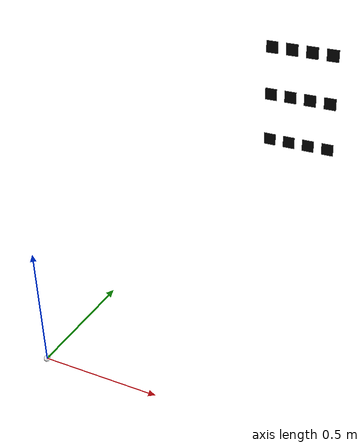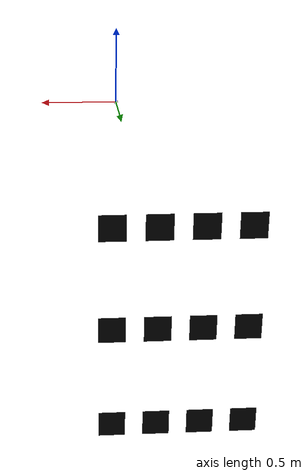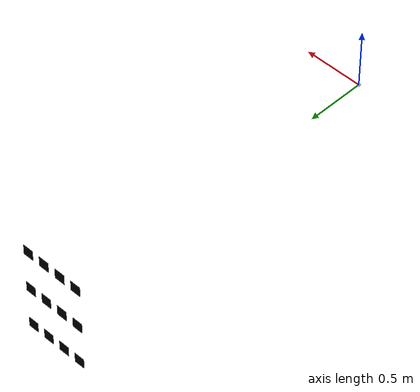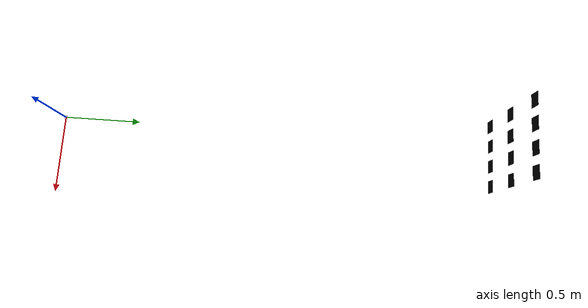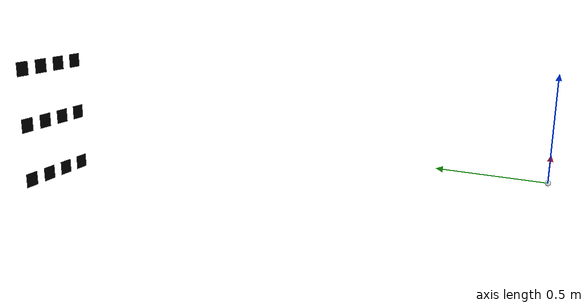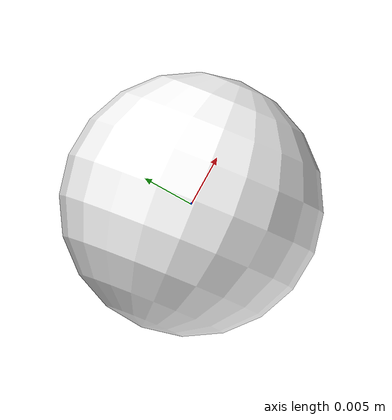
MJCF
<?xml version="1.0"?>
<mujoco>
    <compiler angle="radian"/>
    <option collision="all" timestep="0.002"/>
    <size njmax="1000" nconmax="400"/>
    <default class="main">
        <default class="eye">
            <position ctrllimited="true" kp="10"/>
            <joint type="hinge" stiffness="0.0" damping="0.05" armature="0.0" limited="true"/>
        </default>

        <default class="head-rotations">
            <position ctrllimited="true" kp="10"/>
            <joint type="hinge" stiffness="0.0" damping="0.25" armature="0.0" limited="true"/>
        </default>

        <default class="smart-glass-grid">
            <geom type="box" size="0.045 0.0000001 0.045" rgba="0 0 0 1"/>
        </default>

        <default class="background-grid">
            <geom type="box" size="0.008 0.0001 0.008" rgba="1 1 1 0"/>
        </default>
    </default>
    <asset>
        <texture type="skybox" builtin="gradient" rgb1="1 1 1" rgb2="0.6 0.8 1" width="256" height="256"/>
        <texture type="cube" name="blue-eye" file="assets/blue_eye_texture_circle.png" gridsize="3 4" gridlayout=".U..LFRB.D.."/>
        <material name="blue-eye" texture="blue-eye" texuniform="true"/>
        <mesh name="eye" file="assets/basic_eye_2.stl" scale="0.05 0.05 0.05"/>
        <mesh name="landscape-nus" file="assets/nus_soc_com2.stl" scale="0.025 0.025 0.025"/>
    </asset>
    <worldbody>
        <light name="scene_directional_light" directional="true" castshadow="false" cutoff="4" exponent="20"
               diffuse="1 1 1" specular="0 0 0" pos=".9 .3 2.5"/>

        <camera name="env" pos="0.35 -0.35 0.15" euler="1.4 0.5 0.12"/>

        <body name="eye" pos="0 0 0" quat="0.7071068 0.7071068 0 0">
                <geom name="eye" type="sphere" size="0.0125" material="blue-eye" rgba="1 1 1 1" quat="0.6625191 0.0130711 0.7488417 0.0115643"/>
                <camera name="eye" fovy="90"/>
                <joint name="eye-joint-x" class="eye" axis="1 0 0" range="-0.7854 0.7854"/>
                <joint name="eye-joint-y" class="eye" axis="0 1 0" range="-0.7854 0.7854"/>
                <site name="rangefinder-site" quat="0 0 1 0"/>
        </body>

        <body name="head" pos="0 0 0">
            <body name="smart-glass-pane-interline-spacing-100" pos="0 3 0">
                <geom name="grid-1" pos="-0.225 0 0.36" class="smart-glass-grid"/>
                <geom name="grid-2" pos="-0.075 0 0.36" class="smart-glass-grid"/>
                <geom name="grid-3" pos="0.075 0 0.36" class="smart-glass-grid"/>
                <geom name="grid-4" pos="0.225 0 0.36" class="smart-glass-grid"/>

                <geom name="grid-5" pos="-0.225 0 0" class="smart-glass-grid"/>
                <geom name="grid-6" pos="-0.075 0 0" class="smart-glass-grid"/>
                <geom name="grid-7" pos="0.075 0 0" class="smart-glass-grid"/>
                <geom name="grid-8" pos="0.225 0 0" class="smart-glass-grid"/>

                <geom name="grid-9" pos="-0.225 0 -0.36" class="smart-glass-grid"/>
                <geom name="grid-10" pos="-0.075 0 -0.36" class="smart-glass-grid"/>
                <geom name="grid-11" pos="0.075 0 -0.36" class="smart-glass-grid"/>
                <geom name="grid-12" pos="0.225 0 -0.36" class="smart-glass-grid"/>
            </body>

            <joint name="head-joint-x" class="head-rotations" axis="1 0 0" range="-1 1"/>
            <joint name="head-joint-z" class="head-rotations" axis="0 0 1" range="-1 1"/>
        </body>
        <geom name="landscape-nus" pos="10 100 0" type="mesh" mesh="landscape-nus"/>

    </worldbody>
    <actuator>
        <position name="eye-x-motor" joint="eye-joint-x" class="eye" ctrlrange="-0.7854 0.7854"/>
        <position name="eye-y-motor" joint="eye-joint-y" class="eye" ctrlrange="-0.7854 0.7854"/>
        <position name="head-x-motor" joint="head-joint-x" class="head-rotations" ctrlrange="-0.07 0.07"/>
        <position name="head-z-motor" joint="head-joint-z" class="head-rotations" ctrlrange="-0.15 0.15"/>
    </actuator>
    <sensor>
        <rangefinder name="rangefinder" site="rangefinder-site"/>
    </sensor>
</mujoco>
